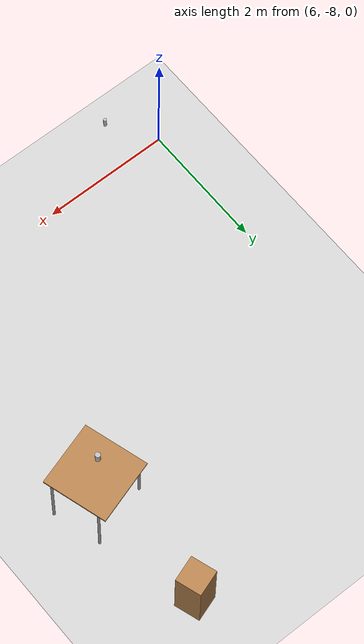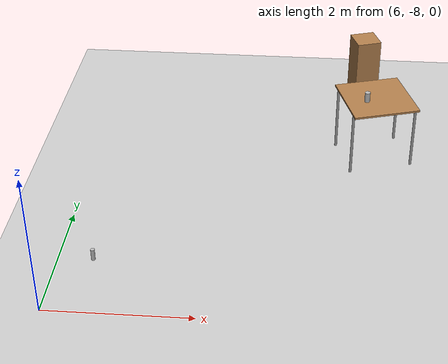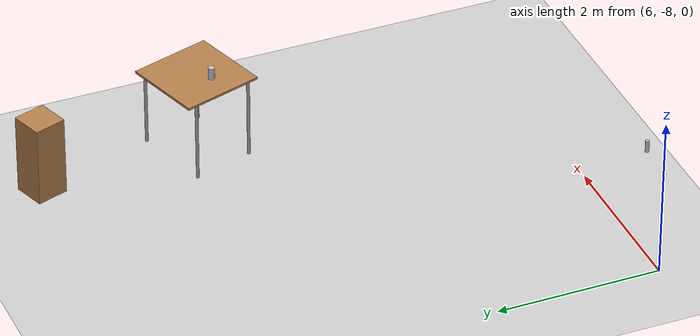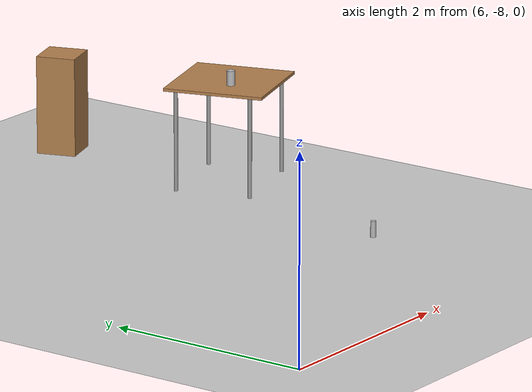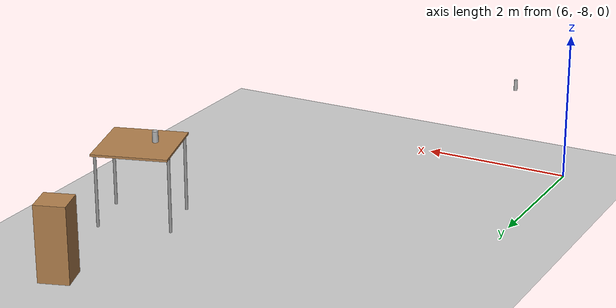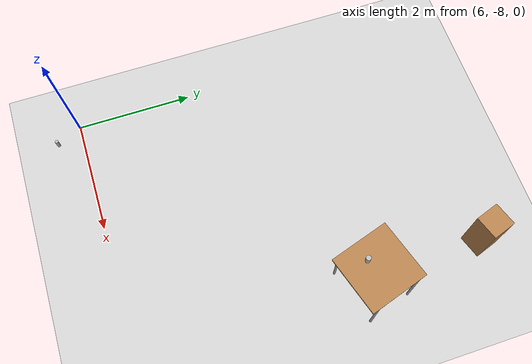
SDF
<sdf version="1.7">
 <world name="default">
  <model name="ground_plane">
   <static>1</static>
   <link name="link">
    <collision name="collision">
     <geometry><plane><normal>0 0 1</normal><size>100 100</size></plane></geometry>
     <surface><friction><ode><mu>100</mu><mu2>50</mu2></ode></friction></surface>
    </collision>
    <visual name="visual">
     <cast_shadows>0</cast_shadows>
     <geometry><plane><normal>0 0 1</normal><size>100 100</size></plane></geometry>
     <material>
      <script><uri>file://media/materials/scripts/gazebo.material</uri><name>Gazebo/Grey</name></script>
     </material>
    </visual>
    <velocity_decay><linear>0</linear><angular>0</angular></velocity_decay>
   </link>
  </model>
  <model name="table_1m">
   <static>1</static>
   <link name="link">
    <collision name="surface">
     <pose>0 0 1.01 0 -0 0</pose>
     <geometry><box><size>1 1.01 0.03</size></box></geometry>
    </collision>
    <visual name="visual1">
     <pose>0 0 1.01 0 -0 0</pose>
     <geometry><box><size>1 1.01 0.03</size></box></geometry>
     <material>
      <script><uri>file://media/materials/scripts/gazebo.material</uri><name>Gazebo/Wood</name></script>
     </material>
    </visual>
    <collision name="front_left_leg">
     <pose>0.48 0.38 0.5005 0 -0 0</pose>
     <geometry><cylinder><radius>0.02</radius><length>1.01</length></cylinder></geometry>
    </collision>
    <visual name="front_left_leg">
     <pose>0.48 0.38 0.5005 0 -0 0</pose>
     <geometry><cylinder><radius>0.02</radius><length>1.01</length></cylinder></geometry>
     <material>
      <script><uri>file://media/materials/scripts/gazebo.material</uri><name>Gazebo/Grey</name></script>
     </material>
    </visual>
    <collision name="front_right_leg">
     <pose>0.48 -0.38 0.5005 0 -0 0</pose>
     <geometry><cylinder><radius>0.02</radius><length>1.01</length></cylinder></geometry>
    </collision>
    <visual name="front_right_leg">
     <pose>0.48 -0.38 0.5005 0 -0 0</pose>
     <geometry><cylinder><radius>0.02</radius><length>1.01</length></cylinder></geometry>
     <material>
      <script><uri>file://media/materials/scripts/gazebo.material</uri><name>Gazebo/Grey</name></script>
     </material>
    </visual>
    <collision name="back_right_leg">
     <pose>-0.48 -0.38 0.5005 0 -0 0</pose>
     <geometry><cylinder><radius>0.02</radius><length>1.01</length></cylinder></geometry>
    </collision>
    <visual name="back_right_leg">
     <pose>-0.48 -0.38 0.5005 0 -0 0</pose>
     <geometry><cylinder><radius>0.02</radius><length>1.01</length></cylinder></geometry>
     <material>
      <script><uri>file://media/materials/scripts/gazebo.material</uri><name>Gazebo/Grey</name></script>
     </material>
    </visual>
    <collision name="back_left_leg">
     <pose>-0.48 0.38 0.5005 0 -0 0</pose>
     <geometry><cylinder><radius>0.02</radius><length>1.01</length></cylinder></geometry>
    </collision>
    <visual name="back_left_leg">
     <pose>-0.48 0.38 0.5005 0 -0 0</pose>
     <geometry><cylinder><radius>0.02</radius><length>1.01</length></cylinder></geometry>
     <material>
      <script><uri>file://media/materials/scripts/gazebo.material</uri><name>Gazebo/Grey</name></script>
     </material>
    </visual>
    <velocity_decay><linear>0</linear><angular>0</angular></velocity_decay>
   </link>
   <pose>10.2832 -4.08151 0 0 -0 0.298805</pose>
  </model>
  <model name="sprite">
   <static>0</static>
   <link name="link">
    <inertial>
     <mass>0.25</mass>
     <inertia><ixx>0</ixx><ixy>0</ixy><ixz>0</ixz><iyy>0</iyy><iyz>0</iyz><izz>0</izz></inertia>
    </inertial>
    <collision name="collision">
     <pose>0 0 0.075 -3.14159 -0 0</pose>
     <geometry><cylinder><radius>0.04</radius><length>0.15</length></cylinder></geometry>
    </collision>
    <visual name="visual">
     <pose>0 0 0.075 -3.14159 -0 0</pose>
     <geometry><cylinder><radius>0.04</radius><length>0.15</length></cylinder></geometry>
     <material>
      <script>
       <uri>model://sprite/material/scripts</uri>
       <uri>model://sprite/material/textures</uri>
       <name>Custom/sprite</name>
      </script>
     </material>
    </visual>
    <velocity_decay><linear>0</linear><angular>0</angular></velocity_decay>
   </link>
   <pose>10.1349 -4.21176 1.025 -0.000337 -8.1e-05 1e-06</pose>
  </model>
  <model name="biscuits_pack">
   <static>0</static>
   <link name="link">
    <inertial>
     <mass>0.01</mass>
     <inertia><ixx>0.001</ixx><ixy>0</ixy><ixz>0</ixz><iyy>0.001</iyy><iyz>0</iyz><izz>0.001</izz></inertia>
    </inertial>
    <collision name="collision">
     <geometry><cylinder><radius>0.025</radius><length>0.15</length></cylinder></geometry>
     <surface><contact><ode><min_depth>0.005</min_depth></ode></contact></surface>
    </collision>
    <visual name="visual">
     <geometry><cylinder><radius>0.025</radius><length>0.15</length></cylinder></geometry>
     <material>
      <script>
       <uri>model://biscuits_pack/material/scripts</uri>
       <uri>model://biscuits_pack/material/textures</uri>
       <name>Custom/biscuits_pack</name>
      </script>
     </material>
    </visual>
   </link>
   <pose>6.83451 -8.20141 1.12673 0.000385 0.000301 -0.658535</pose>
  </model>
  <model name="box">
   <static>0</static>
   <link name="link">
    <collision name="colision"><geometry><box><size>0.4 0.4 1</size></box></geometry></collision>
    <visual name="visual">
     <geometry><box><size>0.4 0.4 1</size></box></geometry>
     <material>
      <script><uri>file://media/materials/scripts/gazebo.material</uri><name>Gazebo/WoodPallet</name></script>
     </material>
    </visual>
    <velocity_decay><linear>0</linear><angular>0</angular></velocity_decay>
    <inertial>
     <inertia><ixx>1</ixx><ixy>0</ixy><ixz>0</ixz><iyy>1</iyy><iyz>0</iyz><izz>1</izz></inertia>
     <mass>1</mass>
    </inertial>
   </link>
   <pose>10.1582 -2.10967 0.5 -2e-06 0 0.323075</pose>
  </model>
 </world>
</sdf>
